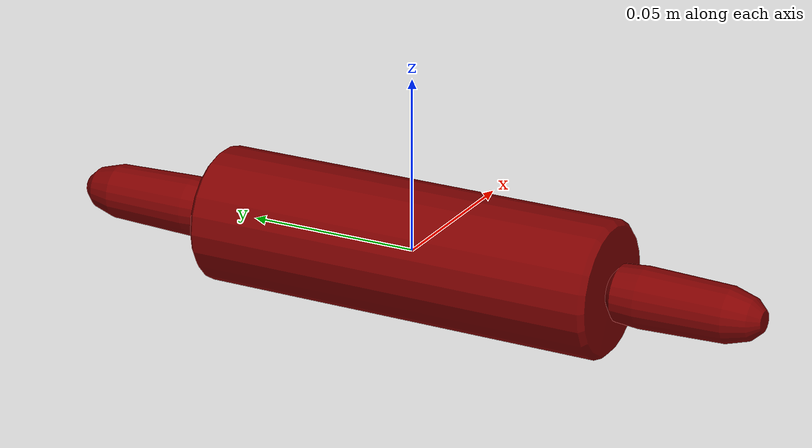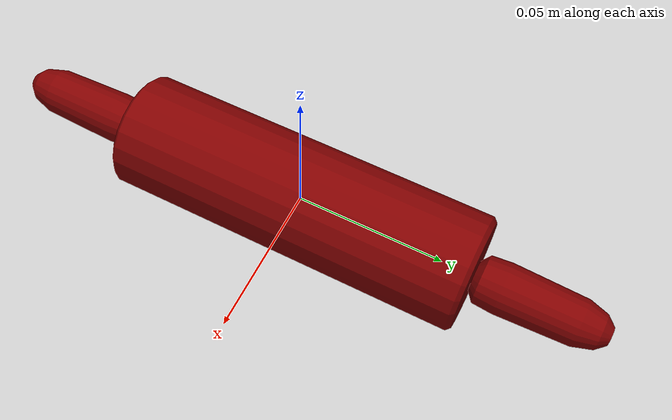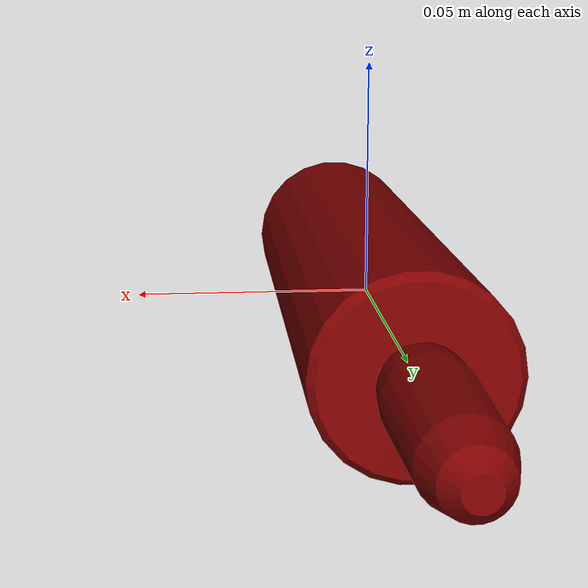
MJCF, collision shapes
<mujoco model="rolling_pin_4">
  <asset>
    <mesh file="visual/model_normalized_0.obj" name="model_normalized_0_vis" scale="0.21000000000000002 0.21000000000000002 0.21000000000000002" refquat="0.7071067811865475 0.0 0.0 0.7071067811865476"/>
    <material name="phong1SG" specular="0.5" shininess="0.0028583989999999997" rgba="0.500000 0.320000 0.160000 1.0"/>
    <mesh file="collision/collision_mesh_collision_0.obj" name="rolling_collision_mesh_0" scale="0.21000000000000002 0.21000000000000002 0.21000000000000002" refquat="0.7071067811865475 0.0 0.0 0.7071067811865476"/>
    <mesh file="collision/collision_mesh_collision_1.obj" name="rolling_collision_mesh_1" scale="0.21000000000000002 0.21000000000000002 0.21000000000000002" refquat="0.7071067811865475 0.0 0.0 0.7071067811865476"/>
    <mesh file="collision/collision_mesh_collision_2.obj" name="rolling_collision_mesh_2" scale="0.21000000000000002 0.21000000000000002 0.21000000000000002" refquat="0.7071067811865475 0.0 0.0 0.7071067811865476"/>
  </asset>
  <default>
    <default class="region">
      <geom group="1" conaffinity="0" contype="0" rgba="0 1 0 0"/>
    </default>
    <default class="collision">
      <geom group="0" rgba="0.5 0 0 0.5" density="1000.0"/>
    </default>
  </default>
  <worldbody>
    <body>
      <body name="object">
        <geom solimp="0.998 0.998 0.001" solref="0.001 1" density="100" friction="0.95 0.3 0.1" type="mesh" mesh="model_normalized_0_vis" conaffinity="0" contype="0" group="1" material="phong1SG"/>
        <geom class="region" name="reg_bbox" type="box" pos="0.0 0.0 0.0" size="0.019392462600000004 0.10500000000000001 0.0191953818"/>
        <geom mesh="rolling_collision_mesh_0" type="mesh" class="collision"/>
        <geom mesh="rolling_collision_mesh_1" type="mesh" class="collision"/>
        <geom mesh="rolling_collision_mesh_2" type="mesh" class="collision"/>
      </body>
    </body>
  </worldbody>
</mujoco>
